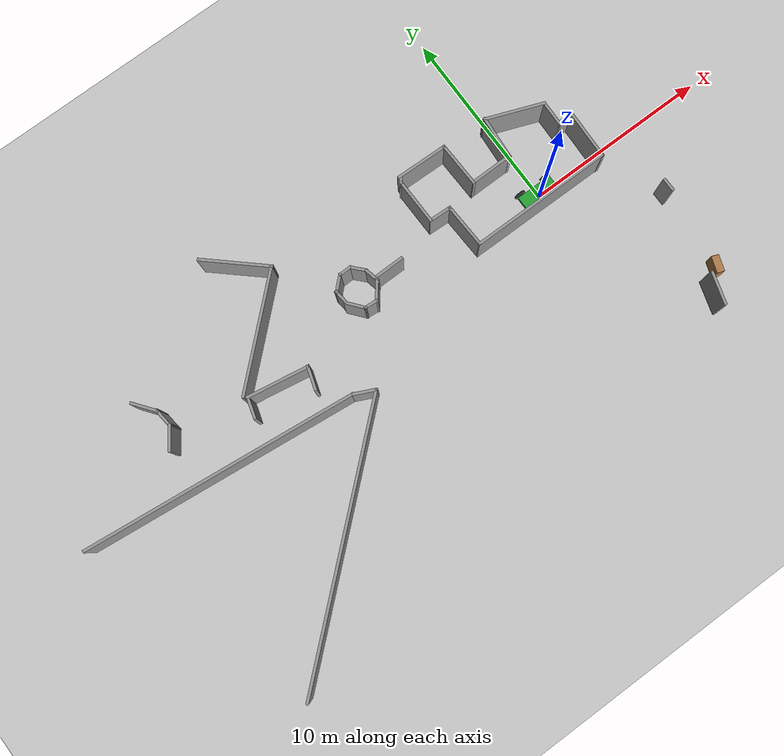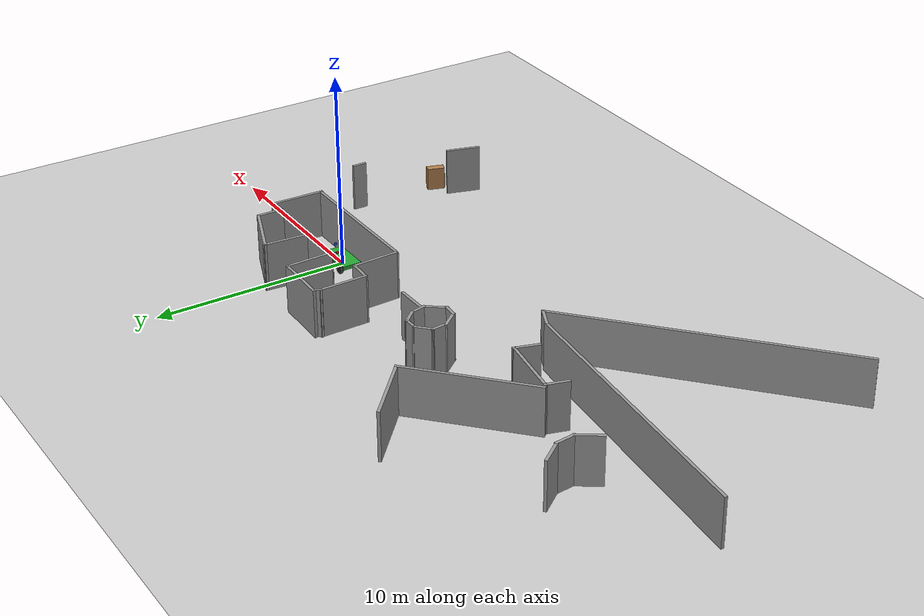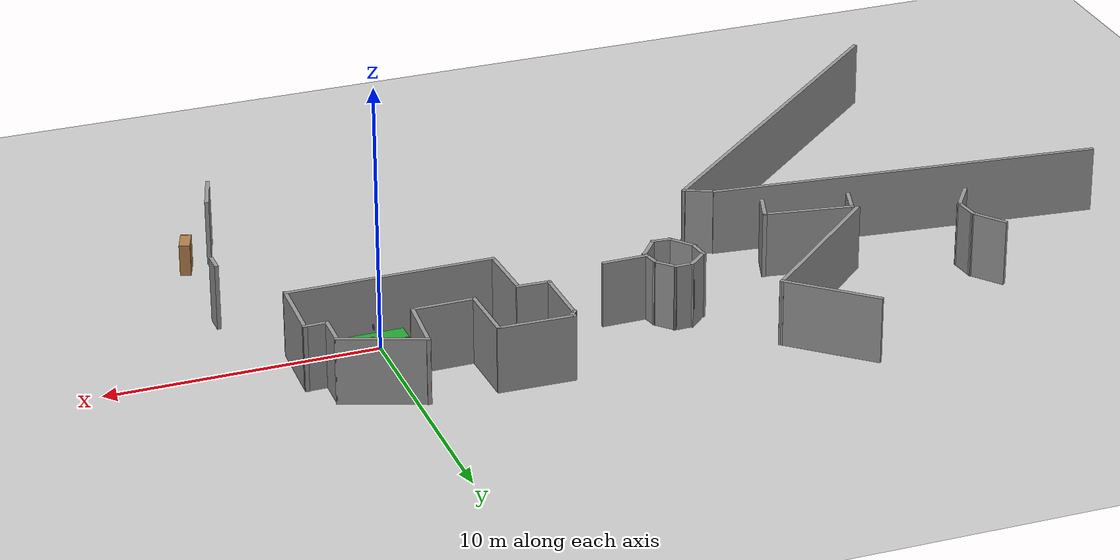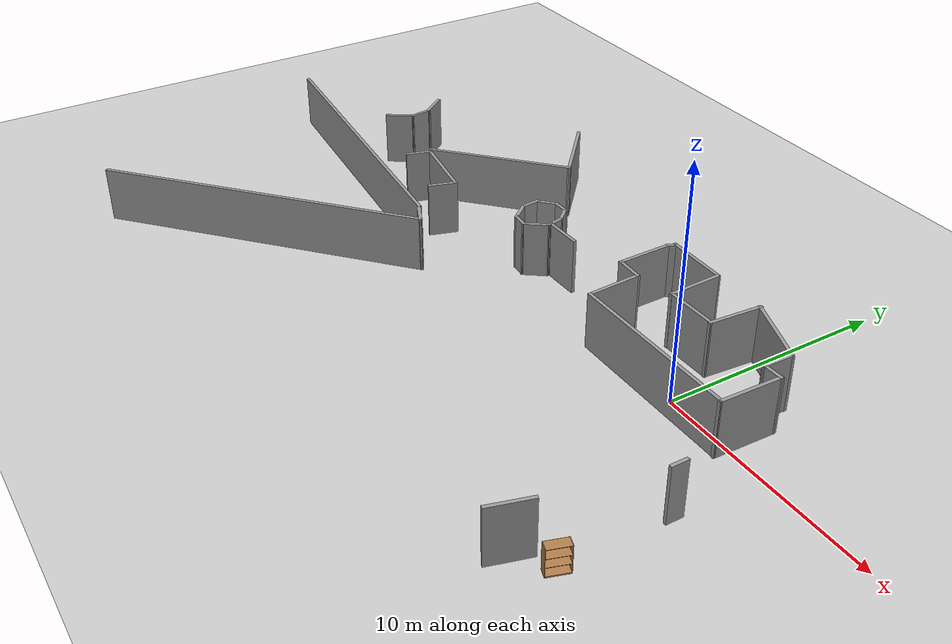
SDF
<sdf version="1.6">
 <world name="default">
  <model name="ground_plane">
   <static>1</static>
   <link name="link">
    <collision name="collision">
     <geometry><plane><normal>0 0 1</normal><size>100 100</size></plane></geometry>
     <surface><friction><ode><mu>100</mu><mu2>50</mu2></ode></friction></surface>
    </collision>
    <visual name="visual">
     <cast_shadows>0</cast_shadows>
     <geometry><plane><normal>0 0 1</normal><size>100 100</size></plane></geometry>
     <material>
      <script><uri>file://media/materials/scripts/gazebo.material</uri><name>Gazebo/Grey</name></script>
     </material>
    </visual>
   </link>
  </model>
  <model name="mall_new_reduce_size">
   <pose>-6.8092 7.5529 0 0 -0 0</pose>
   <link name="Wall_221">
    <collision name="Wall_221_Collision">
     <geometry><box><size>1.80269 0.15 2.5</size></box></geometry>
     <pose>0 0 1.25 0 -0 0</pose>
    </collision>
    <visual name="Wall_221_Visual">
     <pose>0 0 1.25 0 -0 0</pose>
     <geometry><box><size>1.80269 0.15 2.5</size></box></geometry>
     <material>
      <script><uri>file://media/materials/scripts/gazebo.material</uri><name>Gazebo/Grey</name></script>
      <ambient>1 1 1 1</ambient>
     </material>
     <meta><layer>0</layer></meta>
    </visual>
    <pose>10.4346 -16.8787 0 0 -0 1.2841</pose>
   </link>
   <link name="Wall_232">
    <collision name="Wall_232_Collision">
     <geometry><box><size>0.75 0.15 2.5</size></box></geometry>
     <pose>0 0 1.25 0 -0 0</pose>
    </collision>
    <visual name="Wall_232_Visual">
     <pose>0 0 1.25 0 -0 0</pose>
     <geometry><box><size>0.75 0.15 2.5</size></box></geometry>
     <material>
      <script><uri>file://media/materials/scripts/gazebo.material</uri><name>Gazebo/Grey</name></script>
      <ambient>1 1 1 1</ambient>
     </material>
     <meta><layer>0</layer></meta>
    </visual>
    <pose>11.7121 -11.3214 0 0 -0 1.5708</pose>
   </link>
   <link name="Wall_246">
    <collision name="Wall_246_Collision">
     <geometry><box><size>0.40844 0.15 2.5</size></box></geometry>
     <pose>0 0 1.25 0 -0 0</pose>
    </collision>
    <visual name="Wall_246_Visual">
     <pose>0 0 1.25 0 -0 0</pose>
     <geometry><box><size>0.40844 0.15 2.5</size></box></geometry>
     <material>
      <script><uri>file://media/materials/scripts/gazebo.material</uri><name>Gazebo/Grey</name></script>
      <ambient>1 1 1 1</ambient>
     </material>
     <meta><layer>0</layer></meta>
    </visual>
    <pose>1.19003 -3.26525 0 0 -0 -2.19847</pose>
   </link>
   <link name="Wall_247">
    <collision name="Wall_247_Collision">
     <geometry><box><size>2.53 0.15 2.5</size></box></geometry>
     <pose>0 0 1.25 0 -0 0</pose>
    </collision>
    <visual name="Wall_247_Visual">
     <pose>0 0 1.25 0 -0 0</pose>
     <geometry><box><size>2.53 0.15 2.5</size></box></geometry>
     <material>
      <script><uri>file://media/materials/scripts/gazebo.material</uri><name>Gazebo/Grey</name></script>
      <ambient>1 1 1 1</ambient>
     </material>
     <meta><layer>0</layer></meta>
    </visual>
    <pose>1.14793 -4.55973 0 0 -0 -1.55658</pose>
   </link>
   <link name="Wall_248">
    <collision name="Wall_248_Collision">
     <geometry><box><size>1.286 0.15 2.5</size></box></geometry>
     <pose>0 0 1.25 0 -0 0</pose>
    </collision>
    <visual name="Wall_248_Visual">
     <pose>0 0 1.25 0 -0 0</pose>
     <geometry><box><size>1.286 0.15 2.5</size></box></geometry>
     <material>
      <script><uri>file://media/materials/scripts/gazebo.material</uri><name>Gazebo/Grey</name></script>
      <ambient>1 1 1 1</ambient>
     </material>
     <meta><layer>0</layer></meta>
    </visual>
    <pose>1.73245 -5.78757 0 0 -0 -0.037153</pose>
   </link>
   <link name="Wall_249">
    <collision name="Wall_249_Collision">
     <geometry><box><size>2.45157 0.15 2.5</size></box></geometry>
     <pose>0 0 1.25 0 -0 0</pose>
    </collision>
    <visual name="Wall_249_Visual">
     <pose>0 0 1.25 0 -0 0</pose>
     <geometry><box><size>2.45157 0.15 2.5</size></box></geometry>
     <material>
      <script><uri>file://media/materials/scripts/gazebo.material</uri><name>Gazebo/Grey</name></script>
      <ambient>1 1 1 1</ambient>
     </material>
     <meta><layer>0</layer></meta>
    </visual>
    <pose>2.35085 -6.98766 0 0 -0 -1.52665</pose>
   </link>
   <link name="Wall_250">
    <collision name="Wall_250_Collision">
     <geometry><box><size>7.76065 0.15 2.5</size></box></geometry>
     <pose>0 0 1.25 0 -0 0</pose>
    </collision>
    <visual name="Wall_250_Visual">
     <pose>0 0 1.25 0 -0 0</pose>
     <geometry><box><size>7.76065 0.15 2.5</size></box></geometry>
     <material>
      <script><uri>file://media/materials/scripts/gazebo.material</uri><name>Gazebo/Grey</name></script>
      <ambient>1 1 1 1</ambient>
     </material>
     <meta><layer>0</layer></meta>
    </visual>
    <pose>6.20696 -8.14975 0 0 -0 0.000586</pose>
   </link>
   <link name="Wall_251">
    <collision name="Wall_251_Collision">
     <geometry><box><size>2.80823 0.15 2.5</size></box></geometry>
     <pose>0 0 1.25 0 -0 0</pose>
    </collision>
    <visual name="Wall_251_Visual">
     <pose>0 0 1.25 0 -0 0</pose>
     <geometry><box><size>2.80823 0.15 2.5</size></box></geometry>
     <material>
      <script><uri>file://media/materials/scripts/gazebo.material</uri><name>Gazebo/Grey</name></script>
      <ambient>1 1 1 1</ambient>
     </material>
     <meta><layer>0</layer></meta>
    </visual>
    <pose>10.0559 -6.84845 0 0 -0 1.53799</pose>
   </link>
   <link name="Wall_252">
    <collision name="Wall_252_Collision">
     <geometry><box><size>0.933606 0.15 2.5</size></box></geometry>
     <pose>0 0 1.25 0 -0 0</pose>
    </collision>
    <visual name="Wall_252_Visual">
     <pose>0 0 1.25 0 -0 0</pose>
     <geometry><box><size>0.933606 0.15 2.5</size></box></geometry>
     <material>
      <script><uri>file://media/materials/scripts/gazebo.material</uri><name>Gazebo/Grey</name></script>
      <ambient>1 1 1 1</ambient>
     </material>
     <meta><layer>0</layer></meta>
    </visual>
    <pose>9.70783 -5.54603 0 0 -0 -3.11272</pose>
   </link>
   <link name="Wall_253">
    <collision name="Wall_253_Collision">
     <geometry><box><size>1.38548 0.15 2.5</size></box></geometry>
     <pose>0 0 1.25 0 -0 0</pose>
    </collision>
    <visual name="Wall_253_Visual">
     <pose>0 0 1.25 0 -0 0</pose>
     <geometry><box><size>1.38548 0.15 2.5</size></box></geometry>
     <material>
      <script><uri>file://media/materials/scripts/gazebo.material</uri><name>Gazebo/Grey</name></script>
      <ambient>1 1 1 1</ambient>
     </material>
     <meta><layer>0</layer></meta>
    </visual>
    <pose>9.31734 -4.9398 0 0 -0 1.54519</pose>
   </link>
   <link name="Wall_254">
    <collision name="Wall_254_Collision">
     <geometry><box><size>3.27138 0.15 2.5</size></box></geometry>
     <pose>0 0 1.25 0 -0 0</pose>
    </collision>
    <visual name="Wall_254_Visual">
     <pose>0 0 1.25 0 -0 0</pose>
     <geometry><box><size>3.27138 0.15 2.5</size></box></geometry>
     <material>
      <script><uri>file://media/materials/scripts/gazebo.material</uri><name>Gazebo/Grey</name></script>
      <ambient>1 1 1 1</ambient>
     </material>
     <meta><layer>0</layer></meta>
    </visual>
    <pose>7.88874 -3.75366 0 0 -0 2.77875</pose>
   </link>
   <link name="Wall_255">
    <collision name="Wall_255_Collision">
     <geometry><box><size>2.43165 0.15 2.5</size></box></geometry>
     <pose>0 0 1.25 0 -0 0</pose>
    </collision>
    <visual name="Wall_255_Visual">
     <pose>0 0 1.25 0 -0 0</pose>
     <geometry><box><size>2.43165 0.15 2.5</size></box></geometry>
     <material>
      <script><uri>file://media/materials/scripts/gazebo.material</uri><name>Gazebo/Grey</name></script>
      <ambient>1 1 1 1</ambient>
     </material>
     <meta><layer>0</layer></meta>
    </visual>
    <pose>6.35442 -4.32233 0 0 -0 -1.64969</pose>
   </link>
   <link name="Wall_256">
    <collision name="Wall_256_Collision">
     <geometry><box><size>2.39373 0.15 2.5</size></box></geometry>
     <pose>0 0 1.25 0 -0 0</pose>
    </collision>
    <visual name="Wall_256_Visual">
     <pose>0 0 1.25 0 -0 0</pose>
     <geometry><box><size>2.39373 0.15 2.5</size></box></geometry>
     <material>
      <script><uri>file://media/materials/scripts/gazebo.material</uri><name>Gazebo/Grey</name></script>
      <ambient>1 1 1 1</ambient>
     </material>
     <meta><layer>0</layer></meta>
    </visual>
    <pose>5.14271 -5.45702 0 0 -0 -3.13083</pose>
   </link>
   <link name="Wall_257">
    <collision name="Wall_257_Collision">
     <geometry><box><size>2.48743 0.15 2.5</size></box></geometry>
     <pose>0 0 1.25 0 -0 0</pose>
    </collision>
    <visual name="Wall_257_Visual">
     <pose>0 0 1.25 0 -0 0</pose>
     <geometry><box><size>2.48743 0.15 2.5</size></box></geometry>
     <material>
      <script><uri>file://media/materials/scripts/gazebo.material</uri><name>Gazebo/Grey</name></script>
      <ambient>1 1 1 1</ambient>
     </material>
     <meta><layer>0</layer></meta>
    </visual>
    <pose>3.98296 -4.31566 0 0 -0 1.60328</pose>
   </link>
   <link name="Wall_258">
    <collision name="Wall_258_Collision">
     <geometry><box><size>2.86843 0.15 2.5</size></box></geometry>
     <pose>0 0 1.25 0 -0 0</pose>
    </collision>
    <visual name="Wall_258_Visual">
     <pose>0 0 1.25 0 -0 0</pose>
     <geometry><box><size>2.86843 0.15 2.5</size></box></geometry>
     <material>
      <script><uri>file://media/materials/scripts/gazebo.material</uri><name>Gazebo/Grey</name></script>
      <ambient>1 1 1 1</ambient>
     </material>
     <meta><layer>0</layer></meta>
    </visual>
    <pose>2.58612 -3.10264 0 0 -0 3.11933</pose>
   </link>
   <link name="Wall_267">
    <collision name="Wall_267_Collision">
     <geometry><box><size>0.820925 0.15 2.5</size></box></geometry>
     <pose>0 0 1.25 0 -0 0</pose>
    </collision>
    <visual name="Wall_267_Visual">
     <pose>0 0 1.25 0 -0 0</pose>
     <geometry><box><size>0.820925 0.15 2.5</size></box></geometry>
     <material>
      <script><uri>file://media/materials/scripts/gazebo.material</uri><name>Gazebo/Grey</name></script>
      <ambient>1 1 1 1</ambient>
     </material>
     <meta><layer>0</layer></meta>
    </visual>
    <pose>-4.64546 -6.23474 0 0 -0 1.67128</pose>
   </link>
   <link name="Wall_268">
    <collision name="Wall_268_Collision">
     <geometry><box><size>1.02099 0.15 2.5</size></box></geometry>
     <pose>0 0 1.25 0 -0 0</pose>
    </collision>
    <visual name="Wall_268_Visual">
     <pose>0 0 1.25 0 -0 0</pose>
     <geometry><box><size>1.02099 0.15 2.5</size></box></geometry>
     <material>
      <script><uri>file://media/materials/scripts/gazebo.material</uri><name>Gazebo/Grey</name></script>
      <ambient>1 1 1 1</ambient>
     </material>
     <meta><layer>0</layer></meta>
    </visual>
    <pose>-4.34926 -5.61512 0 0 -0 0.761586</pose>
   </link>
   <link name="Wall_269">
    <collision name="Wall_269_Collision">
     <geometry><box><size>0.764839 0.15 2.5</size></box></geometry>
     <pose>0 0 1.25 0 -0 0</pose>
    </collision>
    <visual name="Wall_269_Visual">
     <pose>0 0 1.25 0 -0 0</pose>
     <geometry><box><size>0.764839 0.15 2.5</size></box></geometry>
     <material>
      <script><uri>file://media/materials/scripts/gazebo.material</uri><name>Gazebo/Grey</name></script>
      <ambient>1 1 1 1</ambient>
     </material>
     <meta><layer>0</layer></meta>
    </visual>
    <pose>-3.71208 -5.32193 0 0 -0 0.023853</pose>
   </link>
   <link name="Wall_270">
    <collision name="Wall_270_Collision">
     <geometry><box><size>0.937561 0.15 2.5</size></box></geometry>
     <pose>0 0 1.25 0 -0 0</pose>
    </collision>
    <visual name="Wall_270_Visual">
     <pose>0 0 1.25 0 -0 0</pose>
     <geometry><box><size>0.937561 0.15 2.5</size></box></geometry>
     <material>
      <script><uri>file://media/materials/scripts/gazebo.material</uri><name>Gazebo/Grey</name></script>
      <ambient>1 1 1 1</ambient>
     </material>
     <meta><layer>0</layer></meta>
    </visual>
    <pose>-3.13761 -5.61857 0 0 -0 -0.825217</pose>
   </link>
   <link name="Wall_271">
    <collision name="Wall_271_Collision">
     <geometry><box><size>0.841723 0.15 2.5</size></box></geometry>
     <pose>0 0 1.25 0 -0 0</pose>
    </collision>
    <visual name="Wall_271_Visual">
     <pose>0 0 1.25 0 -0 0</pose>
     <geometry><box><size>0.841723 0.15 2.5</size></box></geometry>
     <material>
      <script><uri>file://media/materials/scripts/gazebo.material</uri><name>Gazebo/Grey</name></script>
      <ambient>1 1 1 1</ambient>
     </material>
     <meta><layer>0</layer></meta>
    </visual>
    <pose>-2.79889 -6.26091 0 0 -0 -1.36232</pose>
   </link>
   <link name="Wall_272">
    <collision name="Wall_272_Collision">
     <geometry><box><size>1.2184 0.15 2.5</size></box></geometry>
     <pose>0 0 1.25 0 -0 0</pose>
    </collision>
    <visual name="Wall_272_Visual">
     <pose>0 0 1.25 0 -0 0</pose>
     <geometry><box><size>1.2184 0.15 2.5</size></box></geometry>
     <material>
      <script><uri>file://media/materials/scripts/gazebo.material</uri><name>Gazebo/Grey</name></script>
      <ambient>1 1 1 1</ambient>
     </material>
     <meta><layer>0</layer></meta>
    </visual>
    <pose>-3.04961 -7.02531 0 0 -0 -2.21847</pose>
   </link>
   <link name="Wall_273">
    <collision name="Wall_273_Collision">
     <geometry><box><size>0.777136 0.15 2.5</size></box></geometry>
     <pose>0 0 1.25 0 -0 0</pose>
    </collision>
    <visual name="Wall_273_Visual">
     <pose>0 0 1.25 0 -0 0</pose>
     <geometry><box><size>0.777136 0.15 2.5</size></box></geometry>
     <material>
      <script><uri>file://media/materials/scripts/gazebo.material</uri><name>Gazebo/Grey</name></script>
      <ambient>1 1 1 1</ambient>
     </material>
     <meta><layer>0</layer></meta>
    </visual>
    <pose>-3.68436 -7.41023 0 0 -0 3.05721</pose>
   </link>
   <link name="Wall_274">
    <collision name="Wall_274_Collision">
     <geometry><box><size>1.15435 0.15 2.5</size></box></geometry>
     <pose>0 0 1.25 0 -0 0</pose>
    </collision>
    <visual name="Wall_274_Visual">
     <pose>0 0 1.25 0 -0 0</pose>
     <geometry><box><size>1.15435 0.15 2.5</size></box></geometry>
     <material>
      <script><uri>file://media/materials/scripts/gazebo.material</uri><name>Gazebo/Grey</name></script>
      <ambient>1 1 1 1</ambient>
     </material>
     <meta><layer>0</layer></meta>
    </visual>
    <pose>-4.31455 -7.00602 0 0 -0 2.25587</pose>
   </link>
   <link name="Wall_280">
    <collision name="Wall_280_Collision">
     <geometry><box><size>1.75812 0.15 2.5</size></box></geometry>
     <pose>0 0 1.25 0 -0 0</pose>
    </collision>
    <visual name="Wall_280_Visual">
     <pose>0 0 1.25 0 -0 0</pose>
     <geometry><box><size>1.75812 0.15 2.5</size></box></geometry>
     <material>
      <script><uri>file://media/materials/scripts/gazebo.material</uri><name>Gazebo/Grey</name></script>
      <ambient>1 1 1 1</ambient>
     </material>
     <meta><layer>0</layer></meta>
    </visual>
    <pose>-1.93612 -6.45549 0 0 -0 0.013364</pose>
   </link>
   <link name="Wall_284">
    <collision name="Wall_284_Collision">
     <geometry><box><size>1.3189 0.15 2.5</size></box></geometry>
     <pose>0 0 1.25 0 -0 0</pose>
    </collision>
    <visual name="Wall_284_Visual">
     <pose>0 0 1.25 0 -0 0</pose>
     <geometry><box><size>1.3189 0.15 2.5</size></box></geometry>
     <material>
      <script><uri>file://media/materials/scripts/gazebo.material</uri><name>Gazebo/Grey</name></script>
      <ambient>1 1 1 1</ambient>
     </material>
     <meta><layer>0</layer></meta>
    </visual>
    <pose>-8.11493 -8.61894 0 0 -0 1.26497</pose>
   </link>
   <link name="Wall_285">
    <collision name="Wall_285_Collision">
     <geometry><box><size>3.37777 0.15 2.5</size></box></geometry>
     <pose>0 0 1.25 0 -0 0</pose>
    </collision>
    <visual name="Wall_285_Visual">
     <pose>0 0 1.25 0 -0 0</pose>
     <geometry><box><size>3.37777 0.15 2.5</size></box></geometry>
     <material>
      <script><uri>file://media/materials/scripts/gazebo.material</uri><name>Gazebo/Grey</name></script>
      <ambient>1 1 1 1</ambient>
     </material>
     <meta><layer>0</layer></meta>
    </visual>
    <pose>-9.56079 -7.81441 0 0 -0 2.97862</pose>
   </link>
   <link name="Wall_286">
    <collision name="Wall_286_Collision">
     <geometry><box><size>1.21161 0.15 2.5</size></box></geometry>
     <pose>0 0 1.25 0 -0 0</pose>
    </collision>
    <visual name="Wall_286_Visual">
     <pose>0 0 1.25 0 -0 0</pose>
     <geometry><box><size>1.21161 0.15 2.5</size></box></geometry>
     <material>
      <script><uri>file://media/materials/scripts/gazebo.material</uri><name>Gazebo/Grey</name></script>
      <ambient>1 1 1 1</ambient>
     </material>
     <meta><layer>0</layer></meta>
    </visual>
    <pose>-11.2883 -8.06181 0 0 -0 -1.85667</pose>
   </link>
   <link name="Wall_289">
    <collision name="Wall_289_Collision">
     <geometry><box><size>3.74389 0.15 2.5</size></box></geometry>
     <pose>0 0 1.25 0 -0 0</pose>
    </collision>
    <visual name="Wall_289_Visual">
     <pose>0 0 1.25 0 -0 0</pose>
     <geometry><box><size>3.74389 0.15 2.5</size></box></geometry>
     <material>
      <script><uri>file://media/materials/scripts/gazebo.material</uri><name>Gazebo/Grey</name></script>
      <ambient>1 1 1 1</ambient>
     </material>
     <meta><layer>0</layer></meta>
    </visual>
    <pose>-7.8177 -1.7822 0 0 -0 -0.730552</pose>
   </link>
   <link name="Wall_293">
    <collision name="Wall_293_Collision">
     <geometry><box><size>6.69055 0.15 2.5</size></box></geometry>
     <pose>0 0 1.25 0 -0 0</pose>
    </collision>
    <visual name="Wall_293_Visual">
     <pose>0 0 1.25 0 -0 0</pose>
     <geometry><box><size>6.69055 0.15 2.5</size></box></geometry>
     <material>
      <script><uri>file://media/materials/scripts/gazebo.material</uri><name>Gazebo/Grey</name></script>
      <ambient>1 1 1 1</ambient>
     </material>
     <meta><layer>0</layer></meta>
    </visual>
    <pose>-8.88827 -5.19299 0 0 -0 -2.39885</pose>
   </link>
   <link name="Wall_300">
    <collision name="Wall_300_Collision">
     <geometry><box><size>1.44179 0.15 2.5</size></box></geometry>
     <pose>0 0 1.25 0 -0 0</pose>
    </collision>
    <visual name="Wall_300_Visual">
     <pose>0 0 1.25 0 -0 0</pose>
     <geometry><box><size>1.44179 0.15 2.5</size></box></geometry>
     <material>
      <script><uri>file://media/materials/scripts/gazebo.material</uri><name>Gazebo/Grey</name></script>
      <ambient>1 1 1 1</ambient>
     </material>
     <meta><layer>0</layer></meta>
    </visual>
    <pose>-15.4086 -4.98387 0 0 -0 -0.922283</pose>
   </link>
   <link name="Wall_301">
    <collision name="Wall_301_Collision">
     <geometry><box><size>1.09033 0.15 2.5</size></box></geometry>
     <pose>0 0 1.25 0 -0 0</pose>
    </collision>
    <visual name="Wall_301_Visual">
     <pose>0 0 1.25 0 -0 0</pose>
     <geometry><box><size>1.09033 0.15 2.5</size></box></geometry>
     <material>
      <script><uri>file://media/materials/scripts/gazebo.material</uri><name>Gazebo/Grey</name></script>
      <ambient>1 1 1 1</ambient>
     </material>
     <meta><layer>0</layer></meta>
    </visual>
    <pose>-14.9682 -5.95144 0 0 -0 -1.4636</pose>
   </link>
   <link name="Wall_302">
    <collision name="Wall_302_Collision">
     <geometry><box><size>1.37103 0.15 2.5</size></box></geometry>
     <pose>0 0 1.25 0 -0 0</pose>
    </collision>
    <visual name="Wall_302_Visual">
     <pose>0 0 1.25 0 -0 0</pose>
     <geometry><box><size>1.37103 0.15 2.5</size></box></geometry>
     <material>
      <script><uri>file://media/materials/scripts/gazebo.material</uri><name>Gazebo/Grey</name></script>
      <ambient>1 1 1 1</ambient>
     </material>
     <meta><layer>0</layer></meta>
    </visual>
    <pose>-15.2636 -6.93047 0 0 -0 -2.17283</pose>
   </link>
   <link name="Wall_310">
    <collision name="Wall_310_Collision">
     <geometry><box><size>14.7966 0.15 2.5</size></box></geometry>
     <pose>0 0 1.25 0 -0 0</pose>
    </collision>
    <visual name="Wall_310_Visual">
     <pose>0 0 1.25 0 -0 0</pose>
     <geometry><box><size>14.7966 0.15 2.5</size></box></geometry>
     <material>
      <script><uri>file://media/materials/scripts/gazebo.material</uri><name>Gazebo/Grey</name></script>
      <ambient>1 1 1 1</ambient>
     </material>
     <meta><layer>0</layer></meta>
    </visual>
    <pose>-14.2431 -9.68361 0 0 -0 -0.103547</pose>
   </link>
   <link name="Wall_311">
    <collision name="Wall_311_Collision">
     <geometry><box><size>1.25215 0.15 2.5</size></box></geometry>
     <pose>0 0 1.25 0 -0 0</pose>
    </collision>
    <visual name="Wall_311_Visual">
     <pose>0 0 1.25 0 -0 0</pose>
     <geometry><box><size>1.25215 0.15 2.5</size></box></geometry>
     <material>
      <script><uri>file://media/materials/scripts/gazebo.material</uri><name>Gazebo/Grey</name></script>
      <ambient>1 1 1 1</ambient>
     </material>
     <meta><layer>0</layer></meta>
    </visual>
    <pose>-6.46 -10.6998 0 0 -0 -0.437998</pose>
   </link>
   <link name="Wall_312">
    <collision name="Wall_312_Collision">
     <geometry><box><size>15.0612 0.15 2.5</size></box></geometry>
     <pose>0 0 1.25 0 -0 0</pose>
    </collision>
    <visual name="Wall_312_Visual">
     <pose>0 0 1.25 0 -0 0</pose>
     <geometry><box><size>15.0612 0.15 2.5</size></box></geometry>
     <material>
      <script><uri>file://media/materials/scripts/gazebo.material</uri><name>Gazebo/Grey</name></script>
      <ambient>1 1 1 1</ambient>
     </material>
     <meta><layer>0</layer></meta>
    </visual>
    <pose>-11.548 -15.883 0 0 -0 -2.41791</pose>
   </link>
   <static>1</static>
  </model>
  <model name="car">
   <link name="chassis">
    <pose>0 0 0.3 0 -0 0</pose>
    <collision name="collision"><geometry><box><size>2 1 0.2</size></box></geometry></collision>
    <visual name="visual">
     <geometry><box><size>2 1 0.2</size></box></geometry>
     <material>
      <script><uri>file://media/materials/scripts/gazebo.material</uri><name>Gazebo/Green</name></script>
     </material>
    </visual>
    <inertial>
     <inertia><ixx>1</ixx><ixy>0</ixy><ixz>0</ixz><iyy>1</iyy><iyz>0</iyz><izz>1</izz></inertia>
     <mass>1</mass>
    </inertial>
   </link>
   <link name="front_left_wheel">
    <pose>0.8 0.6 0.3 -0 1.5707 1.5707</pose>
    <collision name="collision">
     <geometry><cylinder><radius>0.3</radius><length>0.1</length></cylinder></geometry>
    </collision>
    <visual name="visual">
     <geometry><cylinder><radius>0.3</radius><length>0.1</length></cylinder></geometry>
     <material>
      <script><uri>file://media/materials/scripts/gazebo.material</uri><name>Gazebo/Black</name></script>
     </material>
    </visual>
    <inertial>
     <inertia><ixx>1</ixx><ixy>0</ixy><ixz>0</ixz><iyy>1</iyy><iyz>0</iyz><izz>1</izz></inertia>
     <mass>1</mass>
    </inertial>
   </link>
   <link name="front_right_wheel">
    <pose>0.8 -0.6 0.3 -0 1.5707 1.5707</pose>
    <collision name="collision">
     <geometry><cylinder><radius>0.3</radius><length>0.1</length></cylinder></geometry>
    </collision>
    <visual name="visual">
     <geometry><cylinder><radius>0.3</radius><length>0.1</length></cylinder></geometry>
     <material>
      <script><uri>file://media/materials/scripts/gazebo.material</uri><name>Gazebo/Black</name></script>
     </material>
    </visual>
    <inertial>
     <inertia><ixx>1</ixx><ixy>0</ixy><ixz>0</ixz><iyy>1</iyy><iyz>0</iyz><izz>1</izz></inertia>
     <mass>1</mass>
    </inertial>
   </link>
   <link name="back_right_wheel">
    <pose>-0.8 -0.6 0.3 -0 1.5707 1.5707</pose>
    <collision name="collision">
     <geometry><cylinder><radius>0.3</radius><length>0.1</length></cylinder></geometry>
    </collision>
    <visual name="visual">
     <geometry><cylinder><radius>0.3</radius><length>0.1</length></cylinder></geometry>
     <material>
      <script><uri>file://media/materials/scripts/gazebo.material</uri><name>Gazebo/Black</name></script>
     </material>
    </visual>
    <inertial>
     <inertia><ixx>1</ixx><ixy>0</ixy><ixz>0</ixz><iyy>1</iyy><iyz>0</iyz><izz>1</izz></inertia>
     <mass>1</mass>
    </inertial>
   </link>
   <link name="back_left_wheel">
    <pose>-0.8 0.6 0.3 -0 1.5707 1.5707</pose>
    <collision name="collision">
     <geometry><cylinder><radius>0.3</radius><length>0.1</length></cylinder></geometry>
    </collision>
    <visual name="visual">
     <geometry><cylinder><radius>0.3</radius><length>0.1</length></cylinder></geometry>
     <material>
      <script><uri>file://media/materials/scripts/gazebo.material</uri><name>Gazebo/Black</name></script>
     </material>
    </visual>
    <inertial>
     <inertia><ixx>1</ixx><ixy>0</ixy><ixz>0</ixz><iyy>1</iyy><iyz>0</iyz><izz>1</izz></inertia>
     <mass>1</mass>
    </inertial>
   </link>
   <link name="gas_pedal">
    <pose>0.3 0.1 0.5 0 -0 0</pose>
    <collision name="collision"><geometry><box><size>0.1 0.1 0.1</size></box></geometry></collision>
    <visual name="visual">
     <geometry><box><size>0.1 0.1 0.1</size></box></geometry>
     <material>
      <script><uri>file://media/materials/scripts/gazebo.material</uri><name>Gazebo/Red</name></script>
     </material>
    </visual>
    <inertial>
     <inertia><ixx>1</ixx><ixy>0</ixy><ixz>0</ixz><iyy>1</iyy><iyz>0</iyz><izz>1</izz></inertia>
     <mass>1</mass>
    </inertial>
   </link>
   <link name="brake_pedal">
    <pose>0.3 0.25 0.5 0 -0 0</pose>
    <collision name="collision"><geometry><box><size>0.1 0.1 0.1</size></box></geometry></collision>
    <visual name="visual">
     <geometry><box><size>0.1 0.1 0.1</size></box></geometry>
     <material>
      <script><uri>file://media/materials/scripts/gazebo.material</uri><name>Gazebo/Blue</name></script>
     </material>
    </visual>
    <inertial>
     <inertia><ixx>1</ixx><ixy>0</ixy><ixz>0</ixz><iyy>1</iyy><iyz>0</iyz><izz>1</izz></inertia>
     <mass>1</mass>
    </inertial>
   </link>
   <link name="steering_wheel">
    <pose>0.3 0.2 1 0 1.5707 0</pose>
    <collision name="collision">
     <geometry><cylinder><radius>0.1</radius><length>0.01</length></cylinder></geometry>
    </collision>
    <visual name="visual">
     <geometry><cylinder><radius>0.1</radius><length>0.01</length></cylinder></geometry>
     <material>
      <script><uri>file://media/materials/scripts/gazebo.material</uri><name>Gazebo/Blue</name></script>
     </material>
    </visual>
    <inertial>
     <inertia><ixx>1</ixx><ixy>0</ixy><ixz>0</ixz><iyy>1</iyy><iyz>0</iyz><izz>1</izz></inertia>
     <mass>1</mass>
    </inertial>
   </link>
   <joint name="gas_joint" type="prismatic">
    <parent>chassis</parent>
    <child>gas_pedal</child>
    <axis>
     <xyz>1 0 0</xyz>
     <limit><lower>0</lower><upper>0.2</upper></limit>
     <use_parent_model_frame>1</use_parent_model_frame>
     <dynamics><spring_reference>0</spring_reference><spring_stiffness>0</spring_stiffness></dynamics>
    </axis>
   </joint>
   <joint name="brake_joint" type="prismatic">
    <parent>chassis</parent>
    <child>brake_pedal</child>
    <axis>
     <xyz>1 0 0</xyz>
     <limit><lower>0</lower><upper>0.2</upper></limit>
     <use_parent_model_frame>1</use_parent_model_frame>
     <dynamics><spring_reference>0</spring_reference><spring_stiffness>0</spring_stiffness></dynamics>
    </axis>
   </joint>
   <joint name="steering_joint" type="revolute">
    <parent>chassis</parent>
    <child>steering_wheel</child>
    <axis>
     <xyz>1 0 0</xyz>
     <limit><lower>-7.853</lower><upper>7.853</upper></limit>
     <use_parent_model_frame>1</use_parent_model_frame>
     <dynamics><spring_reference>0</spring_reference><spring_stiffness>0</spring_stiffness></dynamics>
    </axis>
   </joint>
   <joint name="front_left_joint" type="revolute2">
    <parent>chassis</parent>
    <child>front_left_wheel</child>
    <axis>
     <xyz>0 0 1</xyz>
     <limit><lower>-0.0500032</lower><upper>-0.0500032</upper></limit>
     <use_parent_model_frame>1</use_parent_model_frame>
     <dynamics><spring_reference>0</spring_reference><spring_stiffness>0</spring_stiffness></dynamics>
    </axis>
    <axis2>
     <xyz>0 1 0</xyz>
     <use_parent_model_frame>1</use_parent_model_frame>
     <dynamics><spring_reference>0</spring_reference><spring_stiffness>0</spring_stiffness></dynamics>
    </axis2>
    <physics><ode><limit><cfm>0</cfm><erp>0.9</erp></limit></ode></physics>
   </joint>
   <joint name="front_right_joint" type="revolute2">
    <parent>chassis</parent>
    <child>front_right_wheel</child>
    <axis>
     <xyz>0 0 1</xyz>
     <limit><lower>-0.0500032</lower><upper>-0.0500032</upper></limit>
     <use_parent_model_frame>1</use_parent_model_frame>
     <dynamics><spring_reference>0</spring_reference><spring_stiffness>0</spring_stiffness></dynamics>
    </axis>
    <axis2>
     <xyz>0 1 0</xyz>
     <use_parent_model_frame>1</use_parent_model_frame>
     <dynamics><spring_reference>0</spring_reference><spring_stiffness>0</spring_stiffness></dynamics>
    </axis2>
    <physics><ode><limit><cfm>0</cfm><erp>0.9</erp></limit></ode></physics>
   </joint>
   <joint name="back_right_joint" type="revolute2">
    <parent>chassis</parent>
    <child>back_right_wheel</child>
    <axis>
     <xyz>0 0 1</xyz>
     <limit><lower>0</lower><upper>0</upper></limit>
     <use_parent_model_frame>1</use_parent_model_frame>
     <dynamics><spring_reference>0</spring_reference><spring_stiffness>0</spring_stiffness></dynamics>
    </axis>
    <axis2>
     <xyz>0 1 0</xyz>
     <use_parent_model_frame>1</use_parent_model_frame>
     <dynamics><spring_reference>0</spring_reference><spring_stiffness>0</spring_stiffness></dynamics>
    </axis2>
    <physics><ode><limit><cfm>0</cfm><erp>0.9</erp></limit></ode></physics>
   </joint>
   <joint name="back_left_joint" type="revolute2">
    <parent>chassis</parent>
    <child>back_left_wheel</child>
    <axis>
     <xyz>0 0 1</xyz>
     <limit><lower>0</lower><upper>0</upper></limit>
     <use_parent_model_frame>1</use_parent_model_frame>
     <dynamics><spring_reference>0</spring_reference><spring_stiffness>0</spring_stiffness></dynamics>
    </axis>
    <axis2>
     <xyz>0 1 0</xyz>
     <use_parent_model_frame>1</use_parent_model_frame>
     <dynamics><spring_reference>0</spring_reference><spring_stiffness>0</spring_stiffness></dynamics>
    </axis2>
    <physics><ode><limit><cfm>0</cfm><erp>0.9</erp></limit></ode></physics>
   </joint>
   <plugin name="vehicle" filename="libVehiclePlugin.so">
    <front_left>front_left_joint</front_left>
    <front_right>front_right_joint</front_right>
    <back_left>back_left_joint</back_left>
    <back_right>back_right_joint</back_right>
    <gas>gas_joint</gas>
    <brake>brake_joint</brake>
    <steering>steering_joint</steering>
    <front_power>10</front_power>
    <rear_power>10</rear_power>
    <tire_angle_range>0.5</tire_angle_range>
    <max_speed>10</max_speed>
    <aero_load>0.1</aero_load>
   </plugin>
  </model>
  <model name="car_0">
   <link name="chassis">
    <pose>0 0 0.3 0 -0 0</pose>
    <collision name="collision"><geometry><box><size>2 1 0.2</size></box></geometry></collision>
    <visual name="visual">
     <geometry><box><size>2 1 0.2</size></box></geometry>
     <material>
      <script><uri>file://media/materials/scripts/gazebo.material</uri><name>Gazebo/Green</name></script>
     </material>
    </visual>
    <inertial>
     <inertia><ixx>1</ixx><ixy>0</ixy><ixz>0</ixz><iyy>1</iyy><iyz>0</iyz><izz>1</izz></inertia>
     <mass>1</mass>
    </inertial>
   </link>
   <link name="front_left_wheel">
    <pose>0.8 0.6 0.3 -0 1.5707 1.5707</pose>
    <collision name="collision">
     <geometry><cylinder><radius>0.3</radius><length>0.1</length></cylinder></geometry>
    </collision>
    <visual name="visual">
     <geometry><cylinder><radius>0.3</radius><length>0.1</length></cylinder></geometry>
     <material>
      <script><uri>file://media/materials/scripts/gazebo.material</uri><name>Gazebo/Black</name></script>
     </material>
    </visual>
    <inertial>
     <inertia><ixx>1</ixx><ixy>0</ixy><ixz>0</ixz><iyy>1</iyy><iyz>0</iyz><izz>1</izz></inertia>
     <mass>1</mass>
    </inertial>
   </link>
   <link name="front_right_wheel">
    <pose>0.8 -0.6 0.3 -0 1.5707 1.5707</pose>
    <collision name="collision">
     <geometry><cylinder><radius>0.3</radius><length>0.1</length></cylinder></geometry>
    </collision>
    <visual name="visual">
     <geometry><cylinder><radius>0.3</radius><length>0.1</length></cylinder></geometry>
     <material>
      <script><uri>file://media/materials/scripts/gazebo.material</uri><name>Gazebo/Black</name></script>
     </material>
    </visual>
    <inertial>
     <inertia><ixx>1</ixx><ixy>0</ixy><ixz>0</ixz><iyy>1</iyy><iyz>0</iyz><izz>1</izz></inertia>
     <mass>1</mass>
    </inertial>
   </link>
   <link name="back_right_wheel">
    <pose>-0.8 -0.6 0.3 -0 1.5707 1.5707</pose>
    <collision name="collision">
     <geometry><cylinder><radius>0.3</radius><length>0.1</length></cylinder></geometry>
    </collision>
    <visual name="visual">
     <geometry><cylinder><radius>0.3</radius><length>0.1</length></cylinder></geometry>
     <material>
      <script><uri>file://media/materials/scripts/gazebo.material</uri><name>Gazebo/Black</name></script>
     </material>
    </visual>
    <inertial>
     <inertia><ixx>1</ixx><ixy>0</ixy><ixz>0</ixz><iyy>1</iyy><iyz>0</iyz><izz>1</izz></inertia>
     <mass>1</mass>
    </inertial>
   </link>
   <link name="back_left_wheel">
    <pose>-0.8 0.6 0.3 -0 1.5707 1.5707</pose>
    <collision name="collision">
     <geometry><cylinder><radius>0.3</radius><length>0.1</length></cylinder></geometry>
    </collision>
    <visual name="visual">
     <geometry><cylinder><radius>0.3</radius><length>0.1</length></cylinder></geometry>
     <material>
      <script><uri>file://media/materials/scripts/gazebo.material</uri><name>Gazebo/Black</name></script>
     </material>
    </visual>
    <inertial>
     <inertia><ixx>1</ixx><ixy>0</ixy><ixz>0</ixz><iyy>1</iyy><iyz>0</iyz><izz>1</izz></inertia>
     <mass>1</mass>
    </inertial>
   </link>
   <link name="gas_pedal">
    <pose>0.3 0.1 0.5 0 -0 0</pose>
    <collision name="collision"><geometry><box><size>0.1 0.1 0.1</size></box></geometry></collision>
    <visual name="visual">
     <geometry><box><size>0.1 0.1 0.1</size></box></geometry>
     <material>
      <script><uri>file://media/materials/scripts/gazebo.material</uri><name>Gazebo/Red</name></script>
     </material>
    </visual>
    <inertial>
     <inertia><ixx>1</ixx><ixy>0</ixy><ixz>0</ixz><iyy>1</iyy><iyz>0</iyz><izz>1</izz></inertia>
     <mass>1</mass>
    </inertial>
   </link>
   <link name="brake_pedal">
    <pose>0.3 0.25 0.5 0 -0 0</pose>
    <collision name="collision"><geometry><box><size>0.1 0.1 0.1</size></box></geometry></collision>
    <visual name="visual">
     <geometry><box><size>0.1 0.1 0.1</size></box></geometry>
     <material>
      <script><uri>file://media/materials/scripts/gazebo.material</uri><name>Gazebo/Blue</name></script>
     </material>
    </visual>
    <inertial>
     <inertia><ixx>1</ixx><ixy>0</ixy><ixz>0</ixz><iyy>1</iyy><iyz>0</iyz><izz>1</izz></inertia>
     <mass>1</mass>
    </inertial>
   </link>
   <link name="steering_wheel">
    <pose>0.3 0.2 1 0 1.5707 0</pose>
    <collision name="collision">
     <geometry><cylinder><radius>0.1</radius><length>0.01</length></cylinder></geometry>
    </collision>
    <visual name="visual">
     <geometry><cylinder><radius>0.1</radius><length>0.01</length></cylinder></geometry>
     <material>
      <script><uri>file://media/materials/scripts/gazebo.material</uri><name>Gazebo/Blue</name></script>
     </material>
    </visual>
    <inertial>
     <inertia><ixx>1</ixx><ixy>0</ixy><ixz>0</ixz><iyy>1</iyy><iyz>0</iyz><izz>1</izz></inertia>
     <mass>1</mass>
    </inertial>
   </link>
   <joint name="gas_joint" type="prismatic">
    <parent>chassis</parent>
    <child>gas_pedal</child>
    <axis>
     <xyz>1 0 0</xyz>
     <limit><lower>0</lower><upper>0.2</upper></limit>
     <use_parent_model_frame>1</use_parent_model_frame>
     <dynamics><spring_reference>0</spring_reference><spring_stiffness>0</spring_stiffness></dynamics>
    </axis>
   </joint>
   <joint name="brake_joint" type="prismatic">
    <parent>chassis</parent>
    <child>brake_pedal</child>
    <axis>
     <xyz>1 0 0</xyz>
     <limit><lower>0</lower><upper>0.2</upper></limit>
     <use_parent_model_frame>1</use_parent_model_frame>
     <dynamics><spring_reference>0</spring_reference><spring_stiffness>0</spring_stiffness></dynamics>
    </axis>
   </joint>
   <joint name="steering_joint" type="revolute">
    <parent>chassis</parent>
    <child>steering_wheel</child>
    <axis>
     <xyz>1 0 0</xyz>
     <limit><lower>-7.853</lower><upper>7.853</upper></limit>
     <use_parent_model_frame>1</use_parent_model_frame>
     <dynamics><spring_reference>0</spring_reference><spring_stiffness>0</spring_stiffness></dynamics>
    </axis>
   </joint>
   <joint name="front_left_joint" type="revolute2">
    <parent>chassis</parent>
    <child>front_left_wheel</child>
    <axis>
     <xyz>0 0 1</xyz>
     <limit><lower>-0.0500032</lower><upper>-0.0500032</upper></limit>
     <use_parent_model_frame>1</use_parent_model_frame>
     <dynamics><spring_reference>0</spring_reference><spring_stiffness>0</spring_stiffness></dynamics>
    </axis>
    <axis2>
     <xyz>0 1 0</xyz>
     <use_parent_model_frame>1</use_parent_model_frame>
     <dynamics><spring_reference>0</spring_reference><spring_stiffness>0</spring_stiffness></dynamics>
    </axis2>
    <physics><ode><limit><cfm>0</cfm><erp>0.9</erp></limit></ode></physics>
   </joint>
   <joint name="front_right_joint" type="revolute2">
    <parent>chassis</parent>
    <child>front_right_wheel</child>
    <axis>
     <xyz>0 0 1</xyz>
     <limit><lower>-0.0500032</lower><upper>-0.0500032</upper></limit>
     <use_parent_model_frame>1</use_parent_model_frame>
     <dynamics><spring_reference>0</spring_reference><spring_stiffness>0</spring_stiffness></dynamics>
    </axis>
    <axis2>
     <xyz>0 1 0</xyz>
     <use_parent_model_frame>1</use_parent_model_frame>
     <dynamics><spring_reference>0</spring_reference><spring_stiffness>0</spring_stiffness></dynamics>
    </axis2>
    <physics><ode><limit><cfm>0</cfm><erp>0.9</erp></limit></ode></physics>
   </joint>
   <joint name="back_right_joint" type="revolute2">
    <parent>chassis</parent>
    <child>back_right_wheel</child>
    <axis>
     <xyz>0 0 1</xyz>
     <limit><lower>0</lower><upper>0</upper></limit>
     <use_parent_model_frame>1</use_parent_model_frame>
     <dynamics><spring_reference>0</spring_reference><spring_stiffness>0</spring_stiffness></dynamics>
    </axis>
    <axis2>
     <xyz>0 1 0</xyz>
     <use_parent_model_frame>1</use_parent_model_frame>
     <dynamics><spring_reference>0</spring_reference><spring_stiffness>0</spring_stiffness></dynamics>
    </axis2>
    <physics><ode><limit><cfm>0</cfm><erp>0.9</erp></limit></ode></physics>
   </joint>
   <joint name="back_left_joint" type="revolute2">
    <parent>chassis</parent>
    <child>back_left_wheel</child>
    <axis>
     <xyz>0 0 1</xyz>
     <limit><lower>0</lower><upper>0</upper></limit>
     <use_parent_model_frame>1</use_parent_model_frame>
     <dynamics><spring_reference>0</spring_reference><spring_stiffness>0</spring_stiffness></dynamics>
    </axis>
    <axis2>
     <xyz>0 1 0</xyz>
     <use_parent_model_frame>1</use_parent_model_frame>
     <dynamics><spring_reference>0</spring_reference><spring_stiffness>0</spring_stiffness></dynamics>
    </axis2>
    <physics><ode><limit><cfm>0</cfm><erp>0.9</erp></limit></ode></physics>
   </joint>
   <plugin name="vehicle" filename="libVehiclePlugin.so">
    <front_left>front_left_joint</front_left>
    <front_right>front_right_joint</front_right>
    <back_left>back_left_joint</back_left>
    <back_right>back_right_joint</back_right>
    <gas>gas_joint</gas>
    <brake>brake_joint</brake>
    <steering>steering_joint</steering>
    <front_power>10</front_power>
    <rear_power>10</rear_power>
    <tire_angle_range>0.5</tire_angle_range>
    <max_speed>10</max_speed>
    <aero_load>0.1</aero_load>
   </plugin>
  </model>
  <model name="bookshelf_18">
   <static>1</static>
   <link name="link">
    <inertial><mass>1</mass></inertial>
    <collision name="back">
     <pose>0 0.005 0.6 0 -0 0</pose>
     <geometry><box><size>0.9 0.01 1.2</size></box></geometry>
    </collision>
    <visual name="visual1">
     <pose>0 0.005 0.6 0 -0 0</pose>
     <geometry><box><size>0.9 0.01 1.2</size></box></geometry>
     <material>
      <script><uri>file://media/materials/scripts/gazebo.material</uri><name>Gazebo/Wood</name></script>
     </material>
    </visual>
    <collision name="left_side">
     <pose>0.45 -0.195 0.6 0 -0 0</pose>
     <geometry><box><size>0.02 0.4 1.2</size></box></geometry>
    </collision>
    <visual name="visual2">
     <pose>0.45 -0.195 0.6 0 -0 0</pose>
     <geometry><box><size>0.02 0.4 1.2</size></box></geometry>
     <material>
      <script><uri>file://media/materials/scripts/gazebo.material</uri><name>Gazebo/Wood</name></script>
     </material>
    </visual>
    <collision name="right_side">
     <pose>-0.45 -0.195 0.6 0 -0 0</pose>
     <geometry><box><size>0.02 0.4 1.2</size></box></geometry>
    </collision>
    <visual name="visual3">
     <pose>-0.45 -0.195 0.6 0 -0 0</pose>
     <geometry><box><size>0.02 0.4 1.2</size></box></geometry>
     <material>
      <script><uri>file://media/materials/scripts/gazebo.material</uri><name>Gazebo/Wood</name></script>
     </material>
    </visual>
    <collision name="bottom">
     <pose>0 -0.195 0.03 0 -0 0</pose>
     <geometry><box><size>0.88 0.4 0.06</size></box></geometry>
    </collision>
    <visual name="visual4">
     <pose>0 -0.195 0.03 0 -0 0</pose>
     <geometry><box><size>0.88 0.4 0.06</size></box></geometry>
     <material>
      <script><uri>file://media/materials/scripts/gazebo.material</uri><name>Gazebo/Wood</name></script>
     </material>
    </visual>
    <collision name="top">
     <pose>0 -0.195 1.19 0 -0 0</pose>
     <geometry><box><size>0.88 0.4 0.02</size></box></geometry>
    </collision>
    <visual name="visual5">
     <pose>0 -0.195 1.19 0 -0 0</pose>
     <geometry><box><size>0.88 0.4 0.02</size></box></geometry>
     <material>
      <script><uri>file://media/materials/scripts/gazebo.material</uri><name>Gazebo/Wood</name></script>
     </material>
    </visual>
    <collision name="low_shelf">
     <pose>0 -0.195 0.43 0 -0 0</pose>
     <geometry><box><size>0.88 0.4 0.02</size></box></geometry>
    </collision>
    <visual name="visual6">
     <pose>0 -0.195 0.43 0 -0 0</pose>
     <geometry><box><size>0.88 0.4 0.02</size></box></geometry>
     <material>
      <script><uri>file://media/materials/scripts/gazebo.material</uri><name>Gazebo/Wood</name></script>
     </material>
    </visual>
    <collision name="high_shelf">
     <pose>0 -0.195 0.8 0 -0 0</pose>
     <geometry><box><size>0.88 0.4 0.02</size></box></geometry>
    </collision>
    <visual name="visual7">
     <pose>0 -0.195 0.8 0 -0 0</pose>
     <geometry><box><size>0.88 0.4 0.02</size></box></geometry>
     <material>
      <script><uri>file://media/materials/scripts/gazebo.material</uri><name>Gazebo/Wood</name></script>
     </material>
    </visual>
   </link>
   <pose>4.6041 -8.24088 0 0 -0 1.24639</pose>
  </model>
 </world>
</sdf>
